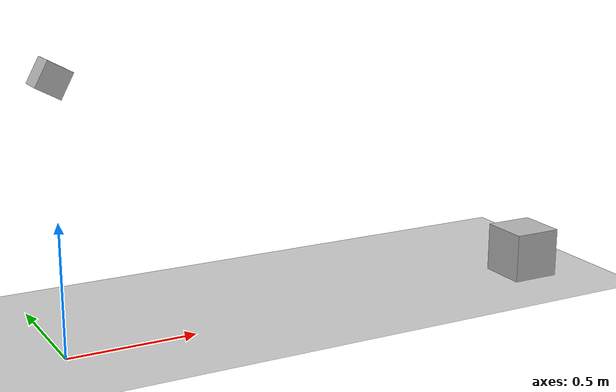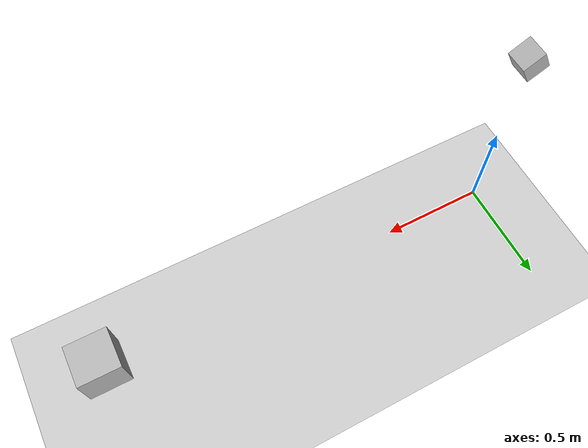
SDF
<?xml version="1.0" ?>
<sdf version="1.5">
  <world name="default">
    <!-- A global light source -->
    <include>
      <uri>model://sun</uri>
    </include>
    <!-- A ground plane -->
    <include>
      <uri>model://ground_plane</uri>
    </include>
    <include>
        <pose>0 0 1 0 0.5 0</pose>
        <uri>model://camera</uri>
        <static>1</static>
      </include>

      <model name="box">
        <pose>2 0 0.1 0 0 0</pose>
        <link name="link">
          <collision name="collision">
            <geometry>
              <box>
                <size>.2 .2 .2</size>
              </box>
            </geometry>
          </collision>
          <visual name="visual">
            <geometry>
              <box>
                <size>.2 .2 .2</size>
              </box>
            </geometry>
            <material>
              <script>Gazebo/WoodPallet</script>
            </material>
          </visual>
        </link>
      </model>
  </world>
</sdf>

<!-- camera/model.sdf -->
<sdf version="1.5">
  <model name="camera">
    <pose>0 0 0.05 0 0 0</pose>
    <link name="link">
      <inertial>
        <mass>0.1</mass>
        <inertia>
          <ixx>0.000166667</ixx>
          <iyy>0.000166667</iyy>
          <izz>0.000166667</izz>
        </inertia>
      </inertial>
      <collision name="collision">
        <geometry>
          <box>
            <size>0.1 0.1 0.1</size>
          </box>
        </geometry>
      </collision>
      <visual name="visual">
        <geometry>
          <box>
            <size>0.1 0.1 0.1</size>
          </box>
        </geometry>
      </visual>
      <sensor name="camera" type="camera">
        <camera>
          <horizontal_fov>1.047</horizontal_fov>
          <image>
            <width>320</width>
            <height>240</height>
          </image>
          <clip>
            <near>0.1</near>
            <far>100</far>
          </clip>
        </camera>
        <always_on>1</always_on>
        <update_rate>30</update_rate>
        <visualize>true</visualize>
      </sensor>
    </link>
  </model>
</sdf>
